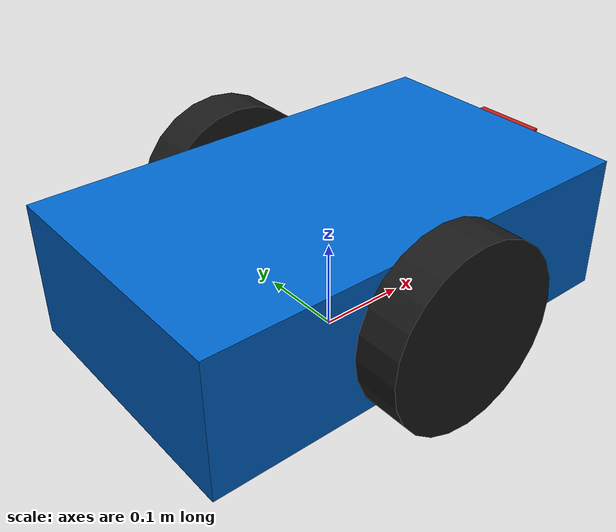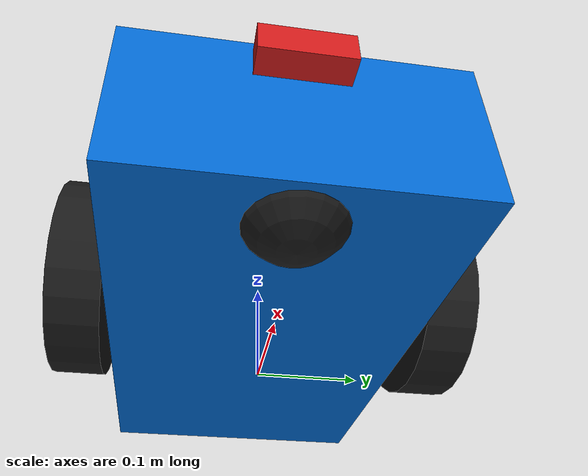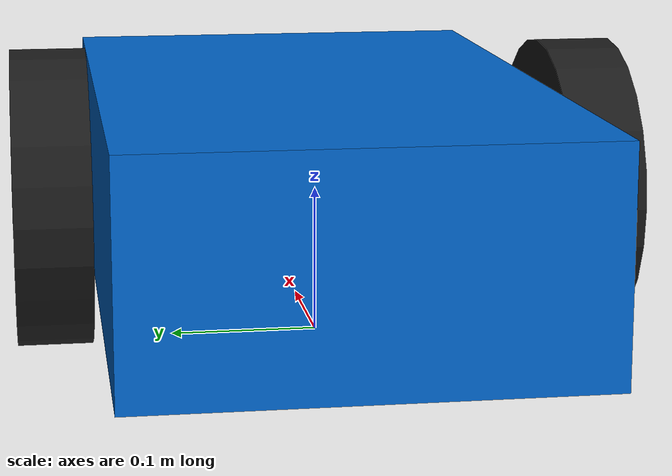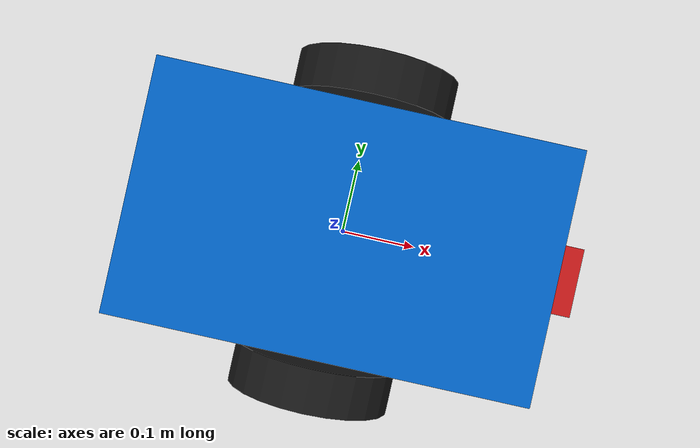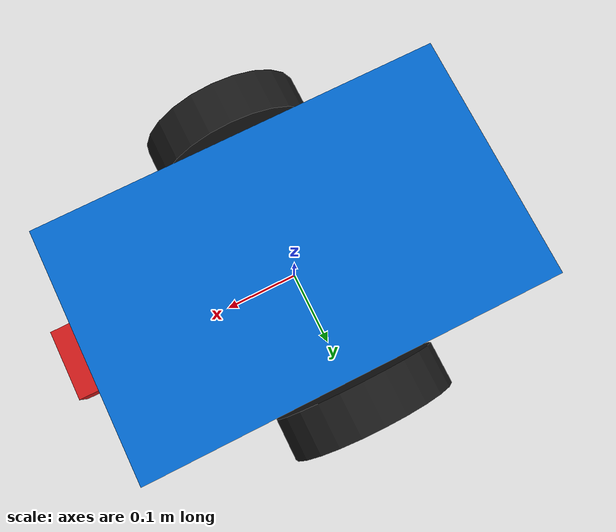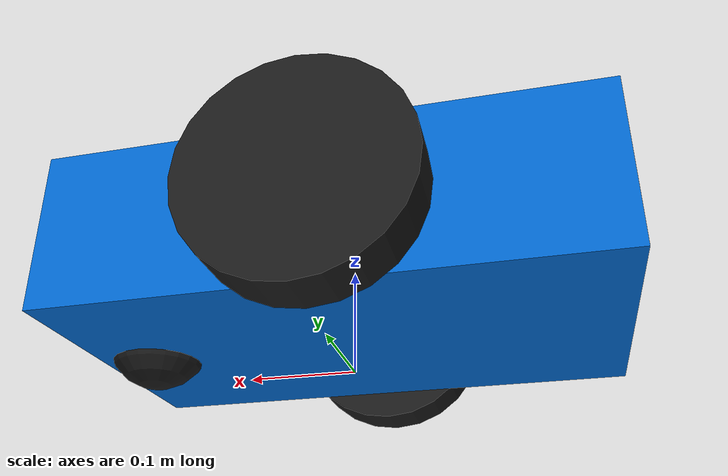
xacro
<?xml version="1.0"?>
<robot xmlns:xacro="http://www.ros.org/wiki/xacro" name="amr_robot">

  <material name="blue"><color rgba="0.0 0.4 0.8 1.0"/></material>
  <material name="black"><color rgba="0.1 0.1 0.1 1.0"/></material>
  <material name="red"><color rgba="0.8 0.1 0.1 1.0"/></material>

  <link name="base_footprint"/>

  <joint name="base_joint" type="fixed">
    <parent link="base_footprint"/>
    <child link="base_link"/>
    <origin xyz="0 0 0.1" rpy="0 0 0"/>
  </joint>

  <link name="base_link">
    <visual>
      <geometry><box size="0.5 0.3 0.15"/></geometry>
      <material name="blue"/>
    </visual>
    <collision>
      <geometry><box size="0.5 0.3 0.15"/></geometry>
    </collision>
    <inertial>
      <mass value="5.0"/>
      <inertia ixx="0.046" ixy="0" ixz="0" iyy="0.113" iyz="0" izz="0.141"/>
    </inertial>
  </link>

  <xacro:macro name="wheel" params="prefix y_reflect">
    <joint name="${prefix}_wheel_joint" type="continuous">
      <parent link="base_link"/>
      <child link="${prefix}_wheel"/>
      <origin xyz="0.0 ${y_reflect * 0.18} 0.0" rpy="-1.5707963 0 0"/>
      <axis xyz="0 0 1"/>
    </joint>

    <link name="${prefix}_wheel">
      <visual>
        <geometry><cylinder radius="0.1" length="0.05"/></geometry>
        <material name="black"/>
      </visual>
      <collision>
        <geometry><cylinder radius="0.1" length="0.05"/></geometry>
      </collision>
      <inertial>
        <mass value="1.0"/>
        <inertia ixx="0.0027" ixy="0" ixz="0" iyy="0.0027" iyz="0" izz="0.005"/>
      </inertial>
    </link>

    <gazebo reference="${prefix}_wheel">
      <mu1>1.0</mu1>
      <mu2>1.0</mu2>
      <kp>1000000.0</kp>
      <kd>100.0</kd>
      <material>Gazebo/DarkGrey</material>
    </gazebo>
  </xacro:macro>

  <xacro:wheel prefix="left" y_reflect="1" />
  <xacro:wheel prefix="right" y_reflect="-1" />

  <joint name="caster_joint" type="fixed">
    <parent link="base_link"/>
    <child link="caster_wheel"/>
    <origin xyz="0.2 0.0 -0.05" rpy="0 0 0"/>
  </joint>

  <link name="caster_wheel">
    <visual>
      <geometry><sphere radius="0.05"/></geometry>
      <material name="black"/>
    </visual>
    <collision>
      <geometry><sphere radius="0.05"/></geometry>
    </collision>
    <inertial>
      <mass value="0.5"/>
      <inertia ixx="0.0005" ixy="0" izz="0.0005" iyy="0.0005" iyz="0" ixz="0"/>
    </inertial>
  </link>

  <gazebo reference="caster_wheel">
    <mu1>0.0001</mu1>
    <mu2>0.0001</mu2>
    <material>Gazebo/DarkGrey</material>
  </gazebo>

  <joint name="camera_joint" type="fixed">
    <parent link="base_link"/>
    <child link="camera_link"/>
    <origin xyz="0.26 0 0.05" rpy="0 0 0"/>
  </joint>

  <link name="camera_link">
    <visual>
      <geometry><box size="0.03 0.08 0.03"/></geometry>
      <material name="red"/>
    </visual>
    <collision>
      <geometry><box size="0.03 0.08 0.03"/></geometry>
    </collision>
  </link>

  <joint name="camera_optical_joint" type="fixed">
    <parent link="camera_link"/>
    <child link="camera_optical_link"/>
    <origin xyz="0 0 0" rpy="-1.5707963 0 -1.5707963"/>
  </joint>
  <link name="camera_optical_link"/>

  <gazebo reference="camera_link">
    <material>Gazebo/Red</material>
    <sensor type="camera" name="forward_camera">
      <update_rate>30.0</update_rate>
      <camera name="head">
        <horizontal_fov>1.3962634</horizontal_fov>
        <image>
          <width>640</width>
          <height>480</height>
          <format>R8G8B8</format>
        </image>
        <clip><near>0.05</near><far>100.0</far></clip>
      </camera>
      <plugin name="camera_controller" filename="libgazebo_ros_camera.so">
        <alwaysOn>true</alwaysOn>
        <updateRate>0.0</updateRate>
        <cameraName>camera</cameraName>
        <imageTopicName>image_raw</imageTopicName>
        <cameraInfoTopicName>camera_info</cameraInfoTopicName>
        <frame_name>camera_optical_link</frame_name>
      </plugin>
    </sensor>
  </gazebo>

  <gazebo>
    <plugin name="diff_drive" filename="libgazebo_ros_diff_drive.so">
      <update_rate>50</update_rate>
      <left_joint>left_wheel_joint</left_joint>
      <right_joint>right_wheel_joint</right_joint>
      <wheel_separation>0.36</wheel_separation>
      <wheel_diameter>0.2</wheel_diameter>
      <max_wheel_torque>20</max_wheel_torque>
      <max_wheel_acceleration>1.0</max_wheel_acceleration>
      <command_topic>cmd_vel</command_topic>
      <publish_odom>true</publish_odom>
      <publish_odom_tf>true</publish_odom_tf>
      <publish_wheel_tf>true</publish_wheel_tf>
      <odometry_topic>odom</odometry_topic>
      <odometry_frame>odom</odometry_frame>
      <robot_base_frame>base_footprint</robot_base_frame>
    </plugin>
  </gazebo>

</robot>
